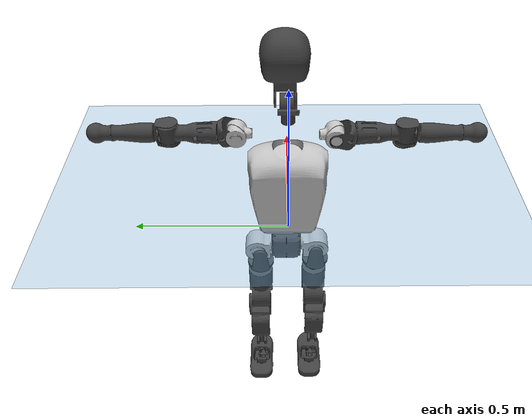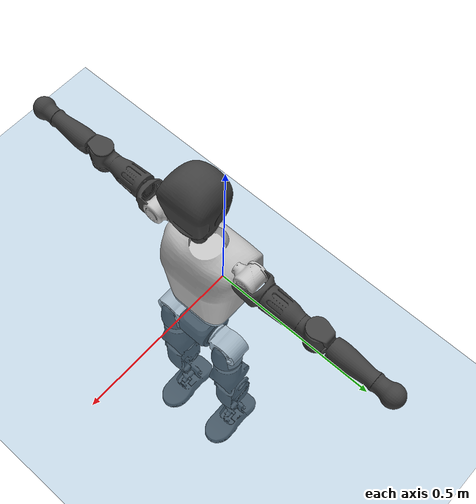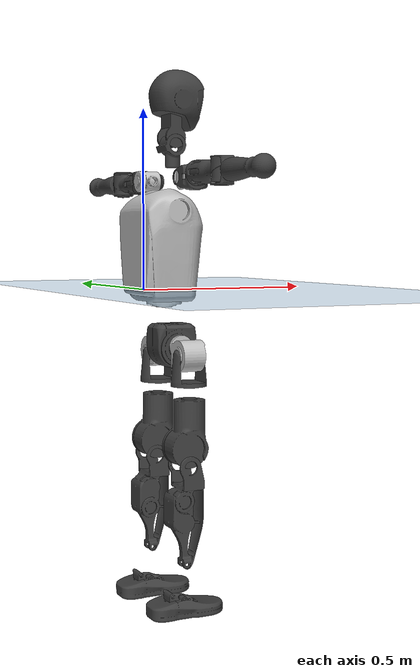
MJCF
<mujoco model="T1">
  <compiler angle="radian" assetdir="assets" balanceinertia="true" inertiafromgeom="false"/>

  <option timestep="0.005" density="1.2" viscosity="2e-05"/>

  <size nkey="1"/>

  <visual>
    <quality shadowsize="8192"/>
    <map shadowclip="0.5"/>
  </visual>

  <default>
    <default class="/">
      <joint armature="0.01" damping="0.01" frictionloss="0.1"/>
      <geom contype="0" conaffinity="0" group="1" solref="-1000 -80"/>
      <site size="0.01 0.005 0.005" group="5"/>
      <general forcelimited="true" biastype="affine" gainprm="25" biasprm="0 -25 -0.6"/>
      <default class="t1">
        <geom rgba="0.25 0.25 0.25 1"/>
        <default class="visual">
          <geom type="mesh" group="2"/>
        </default>
        <default class="collision">
          <geom group="3"/>
        </default>
        <default class="foot">
          <geom size="0.1115 0.05 0.015" type="box" condim="6" group="4" priority="1" solimp="0.015 1 0.015"/>
        </default>
        <default class="reward_collision_sphere">
          <geom group="5" rgba="1 0 0 1"/>
        </default>
      </default>
    </default>
  </default>

  <asset>
    <texture type="skybox" colorspace="auto" name="//unnamed_texture_0" builtin="gradient" rgb1="0.95 0.95 0.95" rgb2="0.95 0.95 0.95" width="100" height="600"/>
    <texture type="2d" colorspace="auto" name="texplane" builtin="checker" rgb1="0.345 0.575 0.748" rgb2="0.345 0.575 0.748" markrgb="1 1 1" width="512" height="512"/>
    <material name="MatPlane" class="/" texture="texplane" texuniform="true" texrepeat="2 2" specular="0.9"/>
    <mesh name="Trunk" class="/" file="Trunk.stl"/>
    <mesh name="H1" class="/" file="H1.stl"/>
    <mesh name="H2" class="/" file="H2.stl"/>
    <mesh name="AL1" class="/" file="AL1.stl"/>
    <mesh name="AL2" class="/" file="AL2.stl"/>
    <mesh name="AL3" class="/" file="AL3.stl"/>
    <mesh name="left_hand_link" class="/" file="left_hand_link.stl"/>
    <mesh name="AR1" class="/" file="AR1.stl"/>
    <mesh name="AR2" class="/" file="AR2.stl"/>
    <mesh name="AR3" class="/" file="AR3.stl"/>
    <mesh name="right_hand_link" class="/" file="right_hand_link.stl"/>
    <mesh name="Waist" class="/" file="Waist.stl"/>
    <mesh name="Hip_Pitch_Left" class="/" file="Hip_Pitch_Left.stl"/>
    <mesh name="Hip_Roll_Left" class="/" file="Hip_Roll_Left.stl"/>
    <mesh name="Hip_Yaw_Left" class="/" file="Hip_Yaw_Left.stl"/>
    <mesh name="Shank_Left" class="/" file="Shank_Left.stl"/>
    <mesh name="Ankle_Cross_Left" class="/" file="Ankle_Cross_Left.stl"/>
    <mesh name="left_foot_link" class="/" file="left_foot_link.stl"/>
    <mesh name="Hip_Pitch_Right" class="/" file="Hip_Pitch_Right.stl"/>
    <mesh name="Hip_Roll_Right" class="/" file="Hip_Roll_Right.stl"/>
    <mesh name="Hip_Yaw_Right" class="/" file="Hip_Yaw_Right.stl"/>
    <mesh name="Shank_Right" class="/" file="Shank_Right.stl"/>
    <mesh name="Ankle_Cross_Right" class="/" file="Ankle_Cross_Right.stl"/>
    <mesh name="right_foot_link" class="/" file="right_foot_link.stl"/>
  </asset>

  <worldbody>
    <geom name="floor" class="/" size="100 100 0.125" type="plane" group="0" material="MatPlane"/>
    <light name="toplight_shadow" class="/" pos="0 0 5" dir="0.0990148 0.0990148 -0.990148" type="directional" ambient="0.04 0.04 0.04" diffuse="0.55 0.55 0.55" specular="0.12 0.12 0.12"/>
    <light name="toplight_fill" class="/" pos="0 0 5" dir="0.0990148 0.0990148 -0.990148" type="directional" castshadow="false" ambient="0.04 0.04 0.04" diffuse="0.3 0.3 0.3" specular="0.08 0.08 0.08"/>
    <body name="trunk" childclass="t1" pos="-5.99339e-05 0.00159143 0.00208734" quat="0.999998 -0.000426711 3.54284e-05 0.0020504">
      <inertial pos="0.0754447 -7.00957e-05 0.143074" quat="0.999841 0.0124975 0.0020467 0.0125208" mass="21.8544" diaginertia="0.344337 0.06246 0.247781"/>
      <joint name="//unnamed_joint_0" type="free" armature="0" damping="0" frictionloss="0"/>
      <geom name="//unnamed_geom_1" class="visual" rgba="0.76 0.76 0.76 1" mesh="Trunk"/>
      <geom name="//unnamed_geom_2" class="collision" size="0.0921317 0.122842 0.184263" pos="0.0811481 0 0.164547" type="box"/>
      <geom name="//unnamed_geom_3" class="reward_collision_sphere" size="0.141269" pos="0.0811481 0 0.137122"/>
      <geom name="//unnamed_geom_4" class="reward_collision_sphere" size="0.0184263" pos="0.0811481 0.0817342 0"/>
      <geom name="//unnamed_geom_5" class="reward_collision_sphere" size="0.0184263" pos="0.0811481 -0.0817342 0"/>
      <geom name="//unnamed_geom_6" class="reward_collision_sphere" size="0.0184263" pos="0.0811481 0.102889 0.24682"/>
      <geom name="//unnamed_geom_7" class="reward_collision_sphere" size="0.0184263" pos="0.0811481 -0.102889 0.24682"/>
      <site name="imu" pos="-0.0192717 0.000134471 0.018517" size="0.0122842"/>
      <camera name="track" pos="0 -1.92316 0" quat="0.707107 0.707107 0 0" mode="trackcom"/>
      <camera name="ego_camera" pos="0.165001 0 0.575913" quat="-0.5 -0.5 0.5 0.5"/>
      <body name="H1" pos="0.0892925 -0.00147501 0.340298" quat="1 0.000198428 -0.000107613 -5.55151e-05">
        <inertial pos="-0.00261694 -0.00400095 0.0787562" quat="0.760687 -0.0119729 0.000860238 0.649008" mass="0.826858" diaginertia="0.00110289 0.000181483 0.000729412"/>
        <joint name="AAHead_yaw" pos="0 0 0" axis="0.00999241 0.000264553 0.99995" range="-1.6461 1.60981" armature="0.00796377" damping="0.015769" frictionloss="0.0831503"/>
        <geom name="//unnamed_geom_8" class="visual" mesh="H1"/>
        <body name="H2" pos="0.000440778 0.00906447 0.0835793" quat="1 6.87517e-06 7.54187e-05 0.000105133">
          <inertial pos="0.00543392 0.00651448 0.143353" quat="0.990093 0.109771 -0.0504073 -0.0715903" mass="1.18675" diaginertia="0.00970572 0.00179142 0.00860417"/>
          <joint name="Head_pitch" pos="0 0 0" axis="0.000884867 -0.999999 -0.000858941" range="-1.18972 0.33078" armature="0.01065" damping="0.040921" frictionloss="0.135601"/>
          <geom name="//unnamed_geom_9" class="visual" mesh="H2"/>
          <geom name="//unnamed_geom_10" class="collision" size="0.0982739" pos="0.0135247 0 0.150834"/>
          <geom name="//unnamed_geom_11" class="reward_collision_sphere" size="0.110558" pos="0.0270494 0 0.137122"/>
        </body>
      </body>
      <body name="AL1" pos="0.0804312 0.105918 0.307276" quat="0.999994 -0.00158651 -0.00301142 0.000148938">
        <inertial pos="0.00195229 0.0449074 -0.00207669" quat="0.502028 0.495133 -0.506257 0.496503" mass="1.00223" diaginertia="0.00635508 0.00119107 0.00155276"/>
        <joint name="Left_Shoulder_Pitch" pos="0 0 0" axis="-0.00849148 0.999809 -0.0175973" range="-3.26403 1.06896" armature="0.0121731" damping="0.0425006" frictionloss="0.111817"/>
        <geom name="//unnamed_geom_12" class="visual" rgba="0.76 0.76 0.76 1" mesh="AL1"/>
        <body name="AL2" pos="0.00664146 0.0453568 -6.44054e-05" quat="1 0.000118002 0.000309821 -0.00038454">
          <inertial pos="0.00607873 0.0296067 0.00144199" quat="0.489402 0.515058 -0.47957 0.514989" mass="0.27902" diaginertia="0.00179007 0.000279761 0.000848375"/>
          <joint name="Left_Shoulder_Roll" pos="0 0 0" axis="-0.999926 0.00688 0.0100636" stiffness="0.0431756" range="-1.60166 1.77548" armature="0.00760846" damping="0.0171308" frictionloss="0.118878"/>
          <geom name="//unnamed_geom_13" class="visual" mesh="AL2"/>
          <body name="AL3" pos="0.000613495 0.0578297 -0.00212662" quat="1 0.000539033 -5.98663e-05 0.000469655">
            <inertial pos="-0.00605172 0.0890981 -0.000556504" quat="0.711538 0.702605 0.00229768 0.00737283" mass="2.16817" diaginertia="0.0574463 0.0113356 0.00335664"/>
            <joint name="Left_Elbow_Pitch" pos="0 0 0" axis="-0.00294768 -0.999983 -0.00495945" range="-2.11481 2.27747" armature="0.00677887" damping="0.00109555" frictionloss="0.112366"/>
            <geom name="//unnamed_geom_14" class="visual" mesh="AL3"/>
            <geom name="//unnamed_geom_15" class="collision" size="0.0368527 0.0921317" pos="0 0.0480789 0" quat="0.707105 0.707108 0 0" type="cylinder"/>
            <geom name="//unnamed_geom_16" class="reward_collision_sphere" size="0.0442232"/>
            <body name="left_hand_link" pos="-0.00103443 0.143493 0.00308358" quat="0.999993 -0.000353227 0.00325701 -0.00184662">
              <inertial pos="0.00776661 0.104841 0.00122123" quat="0.710991 0.703191 0.00130291 0.00358807" mass="0.605451" diaginertia="0.040089 0.00669073 0.000968369"/>
              <joint name="Left_Elbow_Yaw" pos="0 0 0" axis="-0.00324805 -0.00285643 0.999991" stiffness="0.00355575" range="-2.46918 0.160786" armature="0.0109284" damping="0.0052909" frictionloss="0.130467"/>
              <geom name="//unnamed_geom_17" class="visual" mesh="left_hand_link"/>
              <geom name="//unnamed_geom_18" class="collision" size="0.0368527 0.107487" pos="0 0.125005 0" quat="0.707105 0.707108 0 0" type="cylinder"/>
              <geom name="//unnamed_geom_19" class="reward_collision_sphere" size="0.0614212"/>
              <geom name="//unnamed_geom_20" class="reward_collision_sphere" size="0.0429948" pos="0 0.105774 0"/>
              <geom name="//unnamed_geom_21" class="reward_collision_sphere" size="0.0429948" pos="0 0.206739 0"/>
            </body>
          </body>
        </body>
      </body>
      <body name="AR1" pos="0.0773343 -0.0954267 0.303008" quat="1 -4.06442e-05 0.000296158 -5.39743e-05">
        <inertial pos="0.00204708 -0.0344039 -0.00103062" quat="0.493729 0.494908 -0.510801 0.500379" mass="1.05724" diaginertia="0.00672429 0.00110853 0.00150873"/>
        <joint name="Right_Shoulder_Pitch" pos="0 0 0" axis="-0.0281839 -0.999603 0.000327845" stiffness="0.0421281" range="-1.20888 3.34538" armature="0.00867913" damping="0.00376963" frictionloss="0.130577"/>
        <geom name="//unnamed_geom_22" class="visual" rgba="0.76 0.76 0.76 1" mesh="AR1"/>
        <body name="AR2" pos="-0.00805961 -0.0480461 0.00248248" quat="0.999995 -0.000778328 0.00305719 0.000767214">
          <inertial pos="0.00829104 -0.0341274 0.000283974" quat="0.508964 0.489743 -0.514454 0.486255" mass="0.321873" diaginertia="0.00181805 0.000261286 0.000843546"/>
          <joint name="Right_Shoulder_Roll" pos="0 0 0" axis="-0.999984 -0.00517875 0.00225641" range="-1.74025 1.57704" armature="0.0128342" damping="0.00183733" frictionloss="0.0682707"/>
          <geom name="//unnamed_geom_23" class="visual" mesh="AR2"/>
          <body name="AR3" pos="-0.00265993 -0.0581047 0.00909497" quat="1 0.000381483 -0.000282769 -0.000305626">
            <inertial pos="0.00208057 -0.0754523 0.000765098" quat="0.689746 0.723895 -0.00741111 -0.0130587" mass="1.89589" diaginertia="0.0584006 0.010378 0.00279366"/>
            <joint name="Right_Elbow_Pitch" pos="0 0 0" axis="0.0130902 0.999537 0.0274578" range="-2.14827 2.31784" armature="0.0166485" damping="0.0179533" frictionloss="0.103669"/>
            <geom name="//unnamed_geom_24" class="visual" mesh="AR3"/>
            <geom name="//unnamed_geom_25" class="collision" size="0.0368527 0.0921317" pos="0 -0.0480789 0" quat="0.707105 0.707108 0 0" type="cylinder"/>
            <geom name="//unnamed_geom_26" class="reward_collision_sphere" size="0.0442232"/>
            <body name="right_hand_link" pos="-0.000862511 -0.142917 -0.00169729" quat="0.999997 0.00175496 -0.00175414 -0.00058502">
              <inertial pos="0.00228856 -0.104157 -0.00591107" quat="0.706141 0.708071 0.000148275 0.000635277" mass="0.602667" diaginertia="0.0365627 0.00697675 0.00106436"/>
              <joint name="Right_Elbow_Yaw" pos="0 0 0" axis="-0.011421 -0.00970122 0.999888" stiffness="0.00410432" range="-0.0393023 2.37672" armature="0.00830382" damping="0.048749" frictionloss="0.0978531"/>
              <geom name="//unnamed_geom_27" class="visual" mesh="right_hand_link"/>
              <geom name="//unnamed_geom_28" class="collision" size="0.0368527 0.107487" pos="0 -0.125005 0" quat="0.707105 0.707108 0 0" type="cylinder"/>
              <geom name="//unnamed_geom_29" class="reward_collision_sphere" size="0.0614212"/>
              <geom name="//unnamed_geom_30" class="reward_collision_sphere" size="0.0429948" pos="0 -0.105774 0"/>
              <geom name="//unnamed_geom_31" class="reward_collision_sphere" size="0.0429948" pos="0 -0.206739 0"/>
            </body>
          </body>
        </body>
      </body>
      <body name="Waist" pos="0.0871062 0.0050427 -0.166276" quat="1 0.000347154 0.000314059 6.09239e-05">
        <inertial pos="0.00958903 -0.00158302 0.0120856" quat="0.986505 -0.0119676 -0.161643 0.0231454" mass="5.31581" diaginertia="0.0276154 0.00470215 0.0254497"/>
        <joint name="Waist" pos="0 0 0" axis="0.0306516 -0.00390102 0.999523" stiffness="0.00741563" range="-1.53758 1.69791" armature="0.0132944" damping="0" frictionloss="0.0870587"/>
        <geom name="//unnamed_geom_32" class="visual" mesh="Waist"/>
        <body name="Hip_Pitch_Left" pos="0.00241334 0.10266 -0.000610584" quat="1 0.000654572 -0.000356815 0.00015557">
          <inertial pos="-0.000114459 -0.00588571 -0.0271665" quat="0.974653 0.223523 0.00922842 -0.00210279" mass="1.91512" diaginertia="0.00818679 0.00112589 0.00616937"/>
          <joint name="Left_Hip_Pitch" pos="0 0 0" axis="-0.00757729 0.998955 -0.045083" stiffness="0.0364554" range="-1.81747 1.41749" armature="0.0112459" damping="0.0361686" frictionloss="0.113153"/>
          <geom name="//unnamed_geom_33" class="visual" rgba="0.76 0.76 0.76 1" mesh="Hip_Pitch_Left"/>
          <body name="Hip_Roll_Left" pos="-0.000206405 -0.00922739 -0.0329394" quat="0.99999 0.00242035 0.00316929 0.00182201">
            <inertial pos="0.00649096 0.000888302 -0.0720561" quat="0.706475 -0.00800202 -0.00555523 0.707671" mass="0.77095" diaginertia="0.00797766 0.00140689 0.00275996"/>
            <joint name="Left_Hip_Roll" pos="0 0 0" axis="-0.999278 -0.0313434 0.021482" range="-1.5815 0.171623" armature="0.0130927" damping="0" frictionloss="0.112422"/>
            <geom name="//unnamed_geom_34" class="visual" mesh="Hip_Roll_Left"/>
            <geom name="//unnamed_geom_35" class="reward_collision_sphere" size="0.0675633"/>
            <body name="Hip_Yaw_Left" pos="-9.84183e-05 0.00220601 -0.111571" quat="1 -0.000102339 0.000316616 4.11982e-05">
              <inertial pos="-0.00789326 0.00111634 -0.122622" quat="0.703828 -0.0154064 -0.000688601 0.710203" mass="4.38646" diaginertia="0.118173 0.0219493 0.0136221"/>
              <joint name="Left_Hip_Yaw" pos="0 0 0" axis="-0.00404601 -0.0116951 -0.999923" range="-0.922922 1.01171" armature="0.012128" damping="0.00144846" frictionloss="0.135825"/>
              <geom name="//unnamed_geom_36" class="visual" mesh="Hip_Yaw_Left"/>
              <geom name="//unnamed_geom_37" class="collision" size="0.0614212 0.0982739" type="cylinder"/>
              <body name="Shank_Left" pos="-0.0187758 0.0064753 -0.180732" quat="1 -0.000148368 0.000671914 0.000688183">
                <inertial pos="-0.00763508 0.00485431 -0.172832" quat="0.995698 0.0097442 -0.0202231 0.0899009" mass="3.02346" diaginertia="0.151383 0.0270052 0.00946292"/>
                <joint name="Left_Knee_Pitch" pos="0 0 0" axis="0.00113037 0.999983 0.00564032" range="-0.00447823 2.37059" armature="0.00861132" damping="0.0236212" frictionloss="0.115221"/>
                <geom name="//unnamed_geom_38" class="visual" mesh="Shank_Left"/>
                <geom name="//unnamed_geom_39" class="collision" size="0.0614212 0.0921317" pos="0 0 -0.164547" type="cylinder"/>
                <geom name="//unnamed_geom_40" class="reward_collision_sphere" size="0.0798475"/>
                <body name="Ankle_Cross_Left" pos="-0.00191826 -0.00391034 -0.37871" quat="0.999995 -7.09783e-05 -0.00105069 -0.0030504">
                  <inertial pos="-0.00377388 0.00822761 -0.0129412" quat="0.444188 0.539687 0.567636 0.434999" mass="0.131282" diaginertia="0.000126635 1.91613e-05 5.12887e-05"/>
                  <joint name="Left_Ankle_Pitch" pos="0 0 0" axis="0.000176571 0.999876 0.015741" range="-0.84645 0.359008" armature="0.01209" damping="0" frictionloss="0.135739"/>
                  <geom name="//unnamed_geom_41" class="visual" mesh="Ankle_Cross_Left"/>
                  <body name="left_foot_link" pos="0.00513312 0.00784968 -0.0159234" quat="1 0.000476706 0.000284214 0.000134386">
                    <inertial pos="-0.00643756 -0.00195809 -0.0210894" quat="0.00420594 0.617469 0.000312918 0.786584" mass="1.28361" diaginertia="0.0117898 0.0019745 0.0104659"/>
                    <joint name="Left_Ankle_Roll" pos="0 0 0" axis="-0.99999 -0.0029932 -0.00322077" range="-0.469594 0.426589" armature="0.016436" damping="0.0161616" frictionloss="0.11629"/>
                    <geom name="//unnamed_geom_42" class="visual" mesh="left_foot_link"/>
                    <geom name="left_foot" class="foot" size="0.0893662 0.0726817 0.0196622" pos="0.0135247 0 -0.0205683"/>
                    <geom name="//unnamed_geom_44" class="reward_collision_sphere" size="0.063878" pos="0.0135247 0 -0.0205683"/>
                    <geom name="//unnamed_geom_45" class="reward_collision_sphere" size="0.0368527" pos="0.128485 -0.0221163 -0.0205683"/>
                    <geom name="//unnamed_geom_46" class="reward_collision_sphere" size="0.0368527" pos="-0.0946728 -0.0221163 -0.0205683"/>
                    <site name="left_foot" class="foot" pos="0.0135247 0 -0.0205683" size="0.0122842"/>
                  </body>
                </body>
              </body>
            </body>
          </body>
        </body>
        <body name="Hip_Pitch_Right" pos="0.00474437 -0.106626 0.00306947" quat="0.999991 -0.00364973 0.00123871 0.00175397">
          <inertial pos="-0.00108104 0.0165225 -0.0237374" quat="0.974882 -0.222095 0.00958888 -0.0137087" mass="1.98833" diaginertia="0.00889501 0.00134216 0.00657113"/>
          <joint name="Right_Hip_Pitch" pos="0 0 0" axis="-0.00246321 -0.99999 0.00365055" range="-1.48895 1.77309" armature="0.0131491" damping="0.0155997" frictionloss="0.0751321"/>
          <geom name="//unnamed_geom_47" class="visual" rgba="0.76 0.76 0.76 1" mesh="Hip_Pitch_Right"/>
          <body name="Hip_Roll_Right" pos="0.00170664 -3.38125e-05 -0.0273811" quat="0.999999 0.000878233 -0.000358344 0.000372746">
            <inertial pos="0.00822584 -0.00851353 -0.0657195" quat="0.708368 -0.0101179 -0.00523419 0.705751" mass="0.686918" diaginertia="0.00746104 0.00123088 0.00246796"/>
            <joint name="Right_Hip_Roll" pos="0 0 0" axis="-0.999929 -0.0118535 0.000805058" range="-0.238897 1.5529" armature="0.0116117" damping="0.0134785" frictionloss="0.135605"/>
            <geom name="//unnamed_geom_48" class="visual" mesh="Hip_Roll_Right"/>
            <geom name="//unnamed_geom_49" class="reward_collision_sphere" size="0.0675633"/>
            <body name="Hip_Yaw_Right" pos="0.000555303 0.00292476 -0.115173" quat="1 0.000705174 -0.000278547 -0.000271035">
              <inertial pos="-0.0125883 0.0031523 -0.120972" quat="0.714961 -0.030114 -0.0326676 0.697752" mass="4.18697" diaginertia="0.111663 0.0211471 0.0122436"/>
              <joint name="Right_Hip_Yaw" pos="0 0 0" axis="0.00456226 0.0103606 -0.999936" range="-1.05034 1.10974" armature="0.0176448" damping="0" frictionloss="0.0792879"/>
              <geom name="//unnamed_geom_50" class="visual" mesh="Hip_Yaw_Right"/>
              <geom name="//unnamed_geom_51" class="collision" size="0.0614212 0.0982739" type="cylinder"/>
              <body name="Shank_Right" pos="-0.0185681 -0.0076244 -0.184117" quat="0.999995 0.00297528 -0.00108468 -0.000639105">
                <inertial pos="-0.00779944 -0.0046131 -0.176018" quat="0.998344 0.00216351 -0.0397606 -0.041516" mass="3.51838" diaginertia="0.164136 0.0279651 0.00845386"/>
                <joint name="Right_Knee_Pitch" pos="0 0 0" axis="-0.0212289 -0.999594 -0.0189897" range="-2.45151 0.102965" armature="0.0112251" damping="0" frictionloss="0.124016"/>
                <geom name="//unnamed_geom_52" class="visual" mesh="Shank_Right"/>
                <geom name="//unnamed_geom_53" class="collision" size="0.0614212 0.0921317" pos="0 0 -0.164547" type="cylinder"/>
                <geom name="//unnamed_geom_54" class="reward_collision_sphere" size="0.0798475"/>
                <body name="Ankle_Cross_Right" pos="-0.00157274 0.00546709 -0.384577" quat="0.999989 0.00103907 0.00448915 -0.000207338">
                  <inertial pos="-0.00494595 0.000186581 -0.0155477" quat="0.436992 0.557736 0.547962 0.444642" mass="0.138634" diaginertia="0.000132948 2.10301e-05 5.87111e-05"/>
                  <joint name="Right_Ankle_Pitch" pos="0 0 0" axis="0.00171464 -0.999997 -0.00180381" range="-0.239578 0.903053" armature="0.0136622" damping="0.000437687" frictionloss="0.110289"/>
                  <geom name="//unnamed_geom_55" class="visual" mesh="Ankle_Cross_Right"/>
                  <body name="right_foot_link" pos="0.000442787 0.00604534 -0.0152298" quat="1 -0.000309711 3.97283e-05 -0.000508719">
                    <inertial pos="-0.00264708 0.000292588 -0.00719912" quat="-0.00157851 0.623296 -0.00474428 0.78197" mass="1.26048" diaginertia="0.012487 0.00196753 0.0110267"/>
                    <joint name="Right_Ankle_Roll" pos="0 0 0" axis="-0.999814 0.0103432 0.0162933" stiffness="0.0120573" range="-0.624114 0.416016" armature="0.00866949" damping="0.00395793" frictionloss="0.146225"/>
                    <geom name="//unnamed_geom_56" class="visual" mesh="right_foot_link"/>
                    <geom name="right_foot" class="foot" size="0.104365 0.0704531 0.0185916" pos="0.0135247 0 -0.0205683"/>
                    <geom name="//unnamed_geom_58" class="reward_collision_sphere" size="0.0491369"/>
                    <geom name="//unnamed_geom_59" class="reward_collision_sphere" size="0.0368527" pos="0.0135247 0 -0.0205683"/>
                    <geom name="//unnamed_geom_60" class="reward_collision_sphere" size="0.0368527" pos="0.128485 0.0221163 -0.0205683"/>
                    <geom name="//unnamed_geom_61" class="reward_collision_sphere" size="0.0368527" pos="-0.0946728 0.0221163 -0.0205683"/>
                    <site name="right_foot" class="foot" pos="0.0135247 0 -0.0205683" size="0.0122842"/>
                  </body>
                </body>
              </body>
            </body>
          </body>
        </body>
      </body>
    </body>
  </worldbody>

  <contact>
    <pair class="/" geom1="floor" geom2="left_foot" name="//unnamed_contact_0"/>
    <pair class="/" geom1="floor" geom2="right_foot" name="//unnamed_contact_1"/>
  </contact>

  <actuator>
    <general name="AAHead_yaw" class="/" joint="AAHead_yaw" forcerange="-9.40362 9.40362" gainprm="32.582" biasprm="0 -32.582 -0.730865"/>
    <general name="Head_pitch" class="/" joint="Head_pitch" forcerange="-7.45376 7.45376" gainprm="32.582" biasprm="0 -32.582 -0.730865"/>
    <general name="Left_Shoulder_Pitch" class="/" joint="Left_Shoulder_Pitch" forcerange="-20.1017 20.1017" gainprm="32.582" biasprm="0 -32.582 -0.730865"/>
    <general name="Left_Shoulder_Roll" class="/" joint="Left_Shoulder_Roll" forcerange="-17.162 17.162" gainprm="32.582" biasprm="0 -32.582 -0.730865"/>
    <general name="Left_Elbow_Pitch" class="/" joint="Left_Elbow_Pitch" forcerange="-20.7664 20.7664" gainprm="32.582" biasprm="0 -32.582 -0.730865"/>
    <general name="Left_Elbow_Yaw" class="/" joint="Left_Elbow_Yaw" forcerange="-24.0386 24.0386" gainprm="32.582" biasprm="0 -32.582 -0.730865"/>
    <general name="Right_Shoulder_Pitch" class="/" joint="Right_Shoulder_Pitch" forcerange="-22.5282 22.5282" gainprm="32.582" biasprm="0 -32.582 -0.730865"/>
    <general name="Right_Shoulder_Roll" class="/" joint="Right_Shoulder_Roll" forcerange="-22.1058 22.1058" gainprm="32.582" biasprm="0 -32.582 -0.730865"/>
    <general name="Right_Elbow_Pitch" class="/" joint="Right_Elbow_Pitch" forcerange="-23.6534 23.6534" gainprm="32.582" biasprm="0 -32.582 -0.730865"/>
    <general name="Right_Elbow_Yaw" class="/" joint="Right_Elbow_Yaw" forcerange="-20.7016 20.7016" gainprm="32.582" biasprm="0 -32.582 -0.730865"/>
    <general name="Waist" class="/" joint="Waist" forcerange="-45.2618 45.2618" gainprm="32.582" biasprm="0 -32.582 -0.730865"/>
    <general name="Left_Hip_Pitch" class="/" joint="Left_Hip_Pitch" forcerange="-54.5991 54.5991" gainprm="32.582" biasprm="0 -32.582 -0.730865"/>
    <general name="Left_Hip_Roll" class="/" joint="Left_Hip_Roll" forcerange="-34.7783 34.7783" gainprm="32.582" biasprm="0 -32.582 -0.730865"/>
    <general name="Left_Hip_Yaw" class="/" joint="Left_Hip_Yaw" forcerange="-34.7044 34.7044" gainprm="32.582" biasprm="0 -32.582 -0.730865"/>
    <general name="Left_Knee_Pitch" class="/" joint="Left_Knee_Pitch" forcerange="-87.888 87.888" gainprm="32.582" biasprm="0 -32.582 -0.730865"/>
    <general name="Left_Ankle_Pitch" class="/" joint="Left_Ankle_Pitch" forcerange="-16.8797 16.8797" gainprm="32.582" biasprm="0 -32.582 -0.730865"/>
    <general name="Left_Ankle_Roll" class="/" joint="Left_Ankle_Roll" forcerange="-24.7253 24.7253" gainprm="32.582" biasprm="0 -32.582 -0.730865"/>
    <general name="Right_Hip_Pitch" class="/" joint="Right_Hip_Pitch" forcerange="-53.8791 53.8791" gainprm="32.582" biasprm="0 -32.582 -0.730865"/>
    <general name="Right_Hip_Roll" class="/" joint="Right_Hip_Roll" forcerange="-44.0986 44.0986" gainprm="32.582" biasprm="0 -32.582 -0.730865"/>
    <general name="Right_Hip_Yaw" class="/" joint="Right_Hip_Yaw" forcerange="-27.0965 27.0965" gainprm="32.582" biasprm="0 -32.582 -0.730865"/>
    <general name="Right_Knee_Pitch" class="/" joint="Right_Knee_Pitch" forcerange="-75.9925 75.9925" gainprm="32.582" biasprm="0 -32.582 -0.730865"/>
    <general name="Right_Ankle_Pitch" class="/" joint="Right_Ankle_Pitch" forcerange="-24.9124 24.9124" gainprm="32.582" biasprm="0 -32.582 -0.730865"/>
    <general name="Right_Ankle_Roll" class="/" joint="Right_Ankle_Roll" forcerange="-18.2952 18.2952" gainprm="32.582" biasprm="0 -32.582 -0.730865"/>
  </actuator>

  <sensor>
    <gyro site="imu" name="imu_angular_velocity"/>
    <velocimeter site="imu" name="imu_linear_velocity"/>
    <framelinvel objtype="site" objname="left_foot" name="left_foot_global_linear_velocity"/>
    <framelinvel objtype="site" objname="right_foot" name="right_foot_global_linear_velocity"/>
  </sensor>

  <keyframe>
    <key name="home" qpos="0 0 0.6385 1 0 0 0 0 0 0 1.4 0 -0.4 0 -1.4 0 0.4 0 -0.4 0 0 0.8 -0.4 0 0.4 0 0 -0.8 0.4 0"/>
  </keyframe>
</mujoco>
